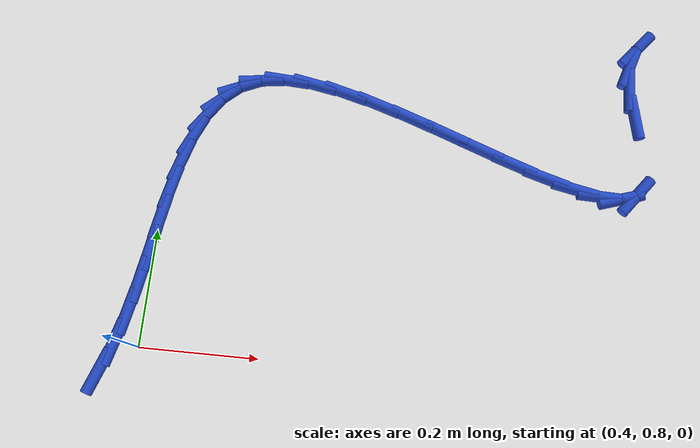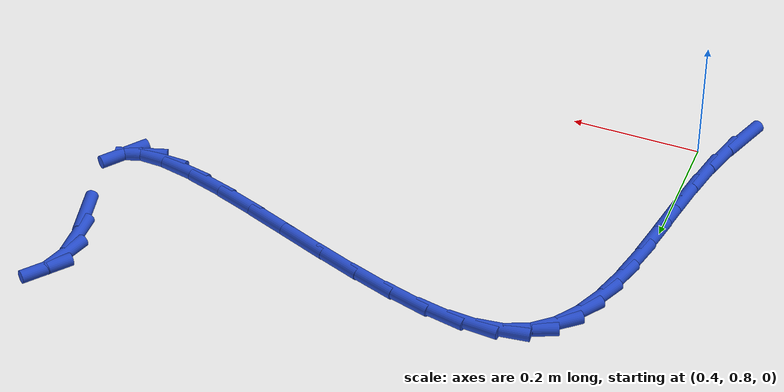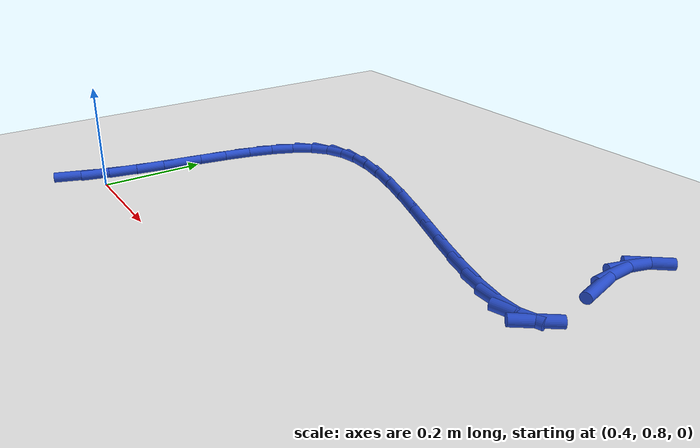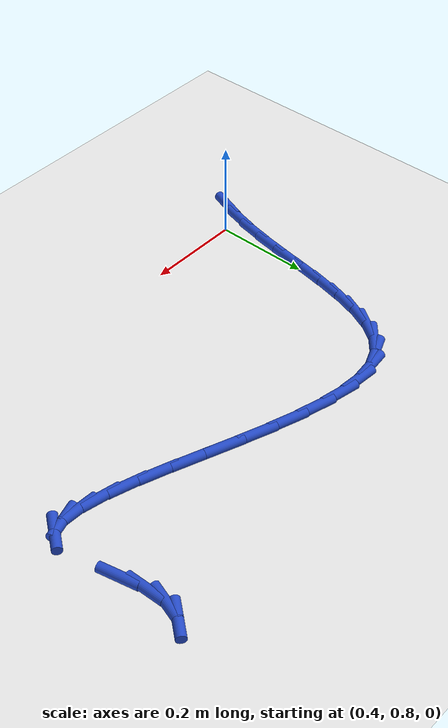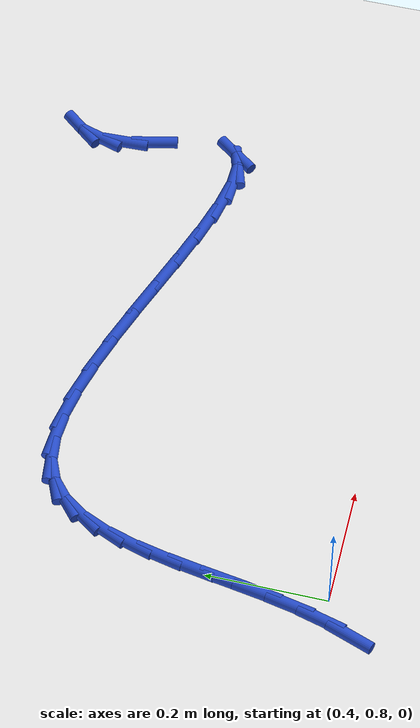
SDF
<sdf version="1.6">
 <world name="default">
  <model name="ground_plane">
   <static>1</static>
   <link name="link">
    <collision name="collision">
     <geometry><plane><normal>0 0 1</normal><size>100 100</size></plane></geometry>
     <surface><friction><ode><mu>100</mu><mu2>50</mu2></ode></friction></surface>
    </collision>
    <visual name="visual">
     <cast_shadows>0</cast_shadows>
     <geometry><plane><normal>0 0 1</normal><size>100 100</size></plane></geometry>
     <material>
      <script><uri>file://media/materials/scripts/gazebo.material</uri><name>Gazebo/WhiteGlow</name></script>
     </material>
    </visual>
   </link>
  </model>
  <model name="line">
   <link name="link_18">
    <pose>0.34210593678256956 0.7556295387319998 0.01 0 1.57 1.2231473477519785</pose>
    <collision name="collision">
     <geometry><cylinder><radius>0.01</radius><length>0.08</length></cylinder></geometry>
    </collision>
    <visual name="visual">
     <material>
      <script><name>Gazebo/Blue</name><uri>file://media/materials/scripts/gazebo.material</uri></script>
     </material>
     <geometry><cylinder><radius>0.01</radius><length>0.08</length></cylinder></geometry>
    </visual>
   </link>
   <link name="link_19">
    <pose>0.3598483151359964 0.8045920638351798 0.01 0 1.57 1.3114645822825304</pose>
    <collision name="collision">
     <geometry><cylinder><radius>0.01</radius><length>0.08</length></cylinder></geometry>
    </collision>
    <visual name="visual">
     <material>
      <script><name>Gazebo/Blue</name><uri>file://media/materials/scripts/gazebo.material</uri></script>
     </material>
     <geometry><cylinder><radius>0.01</radius><length>0.08</length></cylinder></geometry>
    </visual>
   </link>
   <link name="link_20">
    <pose>0.3737409747649443 0.8569567039514656 0.01 0 1.57 1.3706537140713848</pose>
    <collision name="collision">
     <geometry><cylinder><radius>0.01</radius><length>0.08</length></cylinder></geometry>
    </collision>
    <visual name="visual">
     <material>
      <script><name>Gazebo/Blue</name><uri>file://media/materials/scripts/gazebo.material</uri></script>
     </material>
     <geometry><cylinder><radius>0.01</radius><length>0.08</length></cylinder></geometry>
    </visual>
   </link>
   <link name="link_21">
    <pose>0.38480952794594087 0.9115196258371799 0.01 0 1.57 1.40336257802225</pose>
    <collision name="collision">
     <geometry><cylinder><radius>0.01</radius><length>0.08</length></cylinder></geometry>
    </collision>
    <visual name="visual">
     <material>
      <script><name>Gazebo/Blue</name><uri>file://media/materials/scripts/gazebo.material</uri></script>
     </material>
     <geometry><cylinder><radius>0.01</radius><length>0.08</length></cylinder></geometry>
    </visual>
   </link>
   <link name="link_22">
    <pose>0.39418211680521487 0.966973444994785 0.01 0 1.57 1.4121624380151354</pose>
    <collision name="collision">
     <geometry><cylinder><radius>0.01</radius><length>0.08</length></cylinder></geometry>
    </collision>
    <visual name="visual">
     <material>
      <script><name>Gazebo/Blue</name><uri>file://media/materials/scripts/gazebo.material</uri></script>
     </material>
     <geometry><cylinder><radius>0.01</radius><length>0.08</length></cylinder></geometry>
    </visual>
   </link>
   <link name="link_23">
    <pose>0.4029868834689947 1.022010776926742 0.01 0 1.57 1.3969095403009106</pose>
    <collision name="collision">
     <geometry><cylinder><radius>0.01</radius><length>0.08</length></cylinder></geometry>
    </collision>
    <visual name="visual">
     <material>
      <script><name>Gazebo/Blue</name><uri>file://media/materials/scripts/gazebo.material</uri></script>
     </material>
     <geometry><cylinder><radius>0.01</radius><length>0.08</length></cylinder></geometry>
    </visual>
   </link>
   <link name="link_24">
    <pose>0.41235197006350854 1.0753242371355134 0.01 0 1.57 1.3544079565666542</pose>
    <collision name="collision">
     <geometry><cylinder><radius>0.01</radius><length>0.08</length></cylinder></geometry>
    </collision>
    <visual name="visual">
     <material>
      <script><name>Gazebo/Blue</name><uri>file://media/materials/scripts/gazebo.material</uri></script>
     </material>
     <geometry><cylinder><radius>0.01</radius><length>0.08</length></cylinder></geometry>
    </visual>
   </link>
   <link name="link_25">
    <pose>0.42340551871498533 1.1256064411235607 0.01 0 1.57 1.2776014932907915</pose>
    <collision name="collision">
     <geometry><cylinder><radius>0.01</radius><length>0.08</length></cylinder></geometry>
    </collision>
    <visual name="visual">
     <material>
      <script><name>Gazebo/Blue</name><uri>file://media/materials/scripts/gazebo.material</uri></script>
     </material>
     <geometry><cylinder><radius>0.01</radius><length>0.08</length></cylinder></geometry>
    </visual>
   </link>
   <link name="link_26">
    <pose>0.4372756715496534 1.1715500043933464 0.01 0 1.57 1.1545447673238585</pose>
    <collision name="collision">
     <geometry><cylinder><radius>0.01</radius><length>0.08</length></cylinder></geometry>
    </collision>
    <visual name="visual">
     <material>
      <script><name>Gazebo/Blue</name><uri>file://media/materials/scripts/gazebo.material</uri></script>
     </material>
     <geometry><cylinder><radius>0.01</radius><length>0.08</length></cylinder></geometry>
    </visual>
   </link>
   <link name="link_27">
    <pose>0.4550905706937408 1.211847542447331 0.01 0 1.57 0.9692486104632008</pose>
    <collision name="collision">
     <geometry><cylinder><radius>0.01</radius><length>0.08</length></cylinder></geometry>
    </collision>
    <visual name="visual">
     <material>
      <script><name>Gazebo/Blue</name><uri>file://media/materials/scripts/gazebo.material</uri></script>
     </material>
     <geometry><cylinder><radius>0.01</radius><length>0.08</length></cylinder></geometry>
    </visual>
   </link>
   <link name="link_28">
    <pose>0.47797835827347657 1.2451916707879775 0.01 0 1.57 0.7115925599423112</pose>
    <collision name="collision">
     <geometry><cylinder><radius>0.01</radius><length>0.08</length></cylinder></geometry>
    </collision>
    <visual name="visual">
     <material>
      <script><name>Gazebo/Blue</name><uri>file://media/materials/scripts/gazebo.material</uri></script>
     </material>
     <geometry><cylinder><radius>0.01</radius><length>0.08</length></cylinder></geometry>
    </visual>
   </link>
   <link name="link_29">
    <pose>0.507067176415089 1.2702750049177474 0.01 0 1.57 0.40276831272184777</pose>
    <collision name="collision">
     <geometry><cylinder><radius>0.01</radius><length>0.08</length></cylinder></geometry>
    </collision>
    <visual name="visual">
     <material>
      <script><name>Gazebo/Blue</name><uri>file://media/materials/scripts/gazebo.material</uri></script>
     </material>
     <geometry><cylinder><radius>0.01</radius><length>0.08</length></cylinder></geometry>
    </visual>
   </link>
   <link name="link_30">
    <pose>0.5434844601638879 1.2857909605098445 0.01 0 1.57 0.11978055243967799</pose>
    <collision name="collision">
     <geometry><cylinder><radius>0.01</radius><length>0.08</length></cylinder></geometry>
    </collision>
    <visual name="visual">
     <material>
      <script><name>Gazebo/Blue</name><uri>file://media/materials/scripts/gazebo.material</uri></script>
     </material>
     <geometry><cylinder><radius>0.01</radius><length>0.08</length></cylinder></geometry>
    </visual>
   </link>
   <link name="link_31">
    <pose>0.5877515826039983 1.2911188055024834 0.01 0 1.57 -0.06948232969701984</pose>
    <collision name="collision">
     <geometry><cylinder><radius>0.01</radius><length>0.08</length></cylinder></geometry>
    </collision>
    <visual name="visual">
     <material>
      <script><name>Gazebo/Blue</name><uri>file://media/materials/scripts/gazebo.material</uri></script>
     </material>
     <geometry><cylinder><radius>0.01</radius><length>0.08</length></cylinder></geometry>
    </visual>
   </link>
   <link name="link_32">
    <pose>0.6386784621670848 1.2875745818355941 0.01 0 1.57 -0.18952403494256415</pose>
    <collision name="collision">
     <geometry><cylinder><radius>0.01</radius><length>0.08</length></cylinder></geometry>
    </collision>
    <visual name="visual">
     <material>
      <script><name>Gazebo/Blue</name><uri>file://media/materials/scripts/gazebo.material</uri></script>
     </material>
     <geometry><cylinder><radius>0.01</radius><length>0.08</length></cylinder></geometry>
    </visual>
   </link>
   <link name="link_33">
    <pose>0.6947750609891532 1.2768137781030067 0.01 0 1.57 -0.2665521272269219</pose>
    <collision name="collision">
     <geometry><cylinder><radius>0.01</radius><length>0.08</length></cylinder></geometry>
    </collision>
    <visual name="visual">
     <material>
      <script><name>Gazebo/Blue</name><uri>file://media/materials/scripts/gazebo.material</uri></script>
     </material>
     <geometry><cylinder><radius>0.01</radius><length>0.08</length></cylinder></geometry>
    </visual>
   </link>
   <link name="link_34">
    <pose>0.75455134120621 1.2604918828985523 0.01 0 1.57 -0.3155241808932426</pose>
    <collision name="collision">
     <geometry><cylinder><radius>0.01</radius><length>0.08</length></cylinder></geometry>
    </collision>
    <visual name="visual">
     <material>
      <script><name>Gazebo/Blue</name><uri>file://media/materials/scripts/gazebo.material</uri></script>
     </material>
     <geometry><cylinder><radius>0.01</radius><length>0.08</length></cylinder></geometry>
    </visual>
   </link>
   <link name="link_35">
    <pose>0.816517264954262 1.2402643848160597 0.01 0 1.57 -0.34439700062973344</pose>
    <collision name="collision">
     <geometry><cylinder><radius>0.01</radius><length>0.08</length></cylinder></geometry>
    </collision>
    <visual name="visual">
     <material>
      <script><name>Gazebo/Blue</name><uri>file://media/materials/scripts/gazebo.material</uri></script>
     </material>
     <geometry><cylinder><radius>0.01</radius><length>0.08</length></cylinder></geometry>
    </visual>
   </link>
   <link name="link_36">
    <pose>0.8791827943693161 1.217786772449361 0.01 0 1.57 -0.3569143187581209</pose>
    <collision name="collision">
     <geometry><cylinder><radius>0.01</radius><length>0.08</length></cylinder></geometry>
    </collision>
    <visual name="visual">
     <material>
      <script><name>Gazebo/Blue</name><uri>file://media/materials/scripts/gazebo.material</uri></script>
     </material>
     <geometry><cylinder><radius>0.01</radius><length>0.08</length></cylinder></geometry>
    </visual>
   </link>
   <link name="link_37">
    <pose>0.941057891587378 1.1947145343922856 0.01 0 1.57 -0.3538095389307916</pose>
    <collision name="collision">
     <geometry><cylinder><radius>0.01</radius><length>0.08</length></cylinder></geometry>
    </collision>
    <visual name="visual">
     <material>
      <script><name>Gazebo/Blue</name><uri>file://media/materials/scripts/gazebo.material</uri></script>
     </material>
     <geometry><cylinder><radius>0.01</radius><length>0.08</length></cylinder></geometry>
    </visual>
   </link>
   <link name="link_38">
    <pose>1.0006525187444542 1.172703159238664 0.01 0 1.57 -0.3327849656271441</pose>
    <collision name="collision">
     <geometry><cylinder><radius>0.01</radius><length>0.08</length></cylinder></geometry>
    </collision>
    <visual name="visual">
     <material>
      <script><name>Gazebo/Blue</name><uri>file://media/materials/scripts/gazebo.material</uri></script>
     </material>
     <geometry><cylinder><radius>0.01</radius><length>0.08</length></cylinder></geometry>
    </visual>
   </link>
   <link name="link_39">
    <pose>1.0564766379765518 1.153408135582327 0.01 0 1.57 -0.28698941673664113</pose>
    <collision name="collision">
     <geometry><cylinder><radius>0.01</radius><length>0.08</length></cylinder></geometry>
    </collision>
    <visual name="visual">
     <material>
      <script><name>Gazebo/Blue</name><uri>file://media/materials/scripts/gazebo.material</uri></script>
     </material>
     <geometry><cylinder><radius>0.01</radius><length>0.08</length></cylinder></geometry>
    </visual>
   </link>
   <link name="link_40">
    <pose>1.107040211419677 1.1384849520171045 0.01 0 1.57 -0.20031835492136305</pose>
    <collision name="collision">
     <geometry><cylinder><radius>0.01</radius><length>0.08</length></cylinder></geometry>
    </collision>
    <visual name="visual">
     <material>
      <script><name>Gazebo/Blue</name><uri>file://media/materials/scripts/gazebo.material</uri></script>
     </material>
     <geometry><cylinder><radius>0.01</radius><length>0.08</length></cylinder></geometry>
    </visual>
   </link>
   <link name="link_41">
    <pose>1.150853201209836 1.1295890971368274 0.01 0 1.57 -0.03408734912373276</pose>
    <collision name="collision">
     <geometry><cylinder><radius>0.01</radius><length>0.08</length></cylinder></geometry>
    </collision>
    <visual name="visual">
     <material>
      <script><name>Gazebo/Blue</name><uri>file://media/materials/scripts/gazebo.material</uri></script>
     </material>
     <geometry><cylinder><radius>0.01</radius><length>0.08</length></cylinder></geometry>
    </visual>
   </link>
   <link name="link_42">
    <pose>1.1864255694830361 1.1283760595353254 0.01 0 1.57 0.3046372535998166</pose>
    <collision name="collision">
     <geometry><cylinder><radius>0.01</radius><length>0.08</length></cylinder></geometry>
    </collision>
    <visual name="visual">
     <material>
      <script><name>Gazebo/Blue</name><uri>file://media/materials/scripts/gazebo.material</uri></script>
     </material>
     <geometry><cylinder><radius>0.01</radius><length>0.08</length></cylinder></geometry>
    </visual>
   </link>
   <link name="link_43">
    <pose>1.2122672783752835 1.1365013278064298 0.01 0 1.57 0.9179314808489272</pose>
    <collision name="collision">
     <geometry><cylinder><radius>0.01</radius><length>0.08</length></cylinder></geometry>
    </collision>
    <visual name="visual">
     <material>
      <script><name>Gazebo/Blue</name><uri>file://media/materials/scripts/gazebo.material</uri></script>
     </material>
     <geometry><cylinder><radius>0.01</radius><length>0.08</length></cylinder></geometry>
    </visual>
   </link>
   <link name="link_47">
    <pose>1.2061919550621625 1.2799223190543665 0.01 0 1.57 -1.3549696174495471</pose>
    <collision name="collision">
     <geometry><cylinder><radius>0.01</radius><length>0.08</length></cylinder></geometry>
    </collision>
    <visual name="visual">
     <material>
      <script><name>Gazebo/Blue</name><uri>file://media/materials/scripts/gazebo.material</uri></script>
     </material>
     <geometry><cylinder><radius>0.01</radius><length>0.08</length></cylinder></geometry>
    </visual>
   </link>
   <link name="link_48">
    <pose>1.1953658365319724 1.3293021964238787 0.01 0 1.57 -1.543472222563412</pose>
    <collision name="collision">
     <geometry><cylinder><radius>0.01</radius><length>0.08</length></cylinder></geometry>
    </collision>
    <visual name="visual">
     <material>
      <script><name>Gazebo/Blue</name><uri>file://media/materials/scripts/gazebo.material</uri></script>
     </material>
     <geometry><cylinder><radius>0.01</radius><length>0.08</length></cylinder></geometry>
    </visual>
   </link>
   <link name="link_49">
    <pose>1.194172181575558 1.3729763775766313 0.01 0 1.57 1.2639051228521465</pose>
    <collision name="collision">
     <geometry><cylinder><radius>0.01</radius><length>0.08</length></cylinder></geometry>
    </collision>
    <visual name="visual">
     <material>
      <script><name>Gazebo/Blue</name><uri>file://media/materials/scripts/gazebo.material</uri></script>
     </material>
     <geometry><cylinder><radius>0.01</radius><length>0.08</length></cylinder></geometry>
    </visual>
   </link>
   <link name="link_50">
    <pose>1.205364224683296 1.4082933011480983 0.01 0 1.57 0.8837807894317415</pose>
    <collision name="collision">
     <geometry><cylinder><radius>0.01</radius><length>0.08</length></cylinder></geometry>
    </collision>
    <visual name="visual">
     <material>
      <script><name>Gazebo/Blue</name><uri>file://media/materials/scripts/gazebo.material</uri></script>
     </material>
     <geometry><cylinder><radius>0.01</radius><length>0.08</length></cylinder></geometry>
    </visual>
   </link>
  </model>
 </world>
</sdf>
